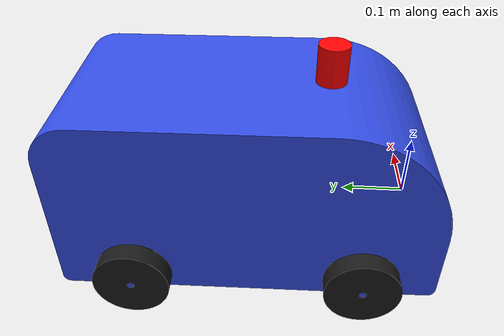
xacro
<?xml version="1.0" ?>
<robot name="rs_go" xmlns:xacro="http://www.ros.org/wiki/xacro">

<xacro:include filename="$(find rs_go)/urdf/materials.xacro" />
<xacro:include filename="$(find rs_go)/urdf/rs_go.trans" />
<xacro:include filename="$(find rs_go)/urdf/rs_go.gazebo" />
<link name="base_link">
  <inertial>
    <origin rpy="0 0 0" xyz="-0.125 0.2576675591905234 0.14581411451370685"/>
    <mass value="10.00"/> <!-- mass = 234.76101992664752-->
    <inertia ixx="5.75365" ixy="0.0" ixz="0.0" iyy="2.395906" iyz="-0.162257" izz="5.804866"/>
  </inertial>
  <visual>
    <origin rpy="0 0 0" xyz="0 0 0"/>
    <geometry>
      <mesh filename="package://rs_go/meshes/base_link.stl" scale="0.001 0.001 0.001"/>
    </geometry>
    <material name="rs_color"/>
  </visual>
  <collision>
    <origin rpy="0 0 0" xyz="0 0 0"/>
    <geometry>
      <mesh filename="package://rs_go/meshes/base_link.stl" scale="0.001 0.001 0.001"/>
    </geometry>
  </collision>
</link>

<link name="front_left_wheel_1">
  <inertial>
    <origin rpy="0 0 0" xyz="0.012499999999999997 -5.3013149425851225e-15 0.0"/>
    <mass value="1.5259304567108163"/>
    <inertia ixx="0.001926" ixy="-0.0" ixz="-0.0" iyy="0.001043" iyz="-0.0" izz="0.001043"/>
  </inertial>
  <visual>
    <origin rpy="0 0 0" xyz="-0.0 -0.1 -0.05"/>
    <geometry>
      <mesh filename="package://rs_go/meshes/front_left_wheel_1.stl" scale="0.001 0.001 0.001"/>
    </geometry>
    <material name="black"/>
  </visual>
  <collision>
    <origin rpy="0 0 0" xyz="-0.0 -0.1 -0.05"/>
    <geometry>
      <mesh filename="package://rs_go/meshes/front_left_wheel_1.stl" scale="0.001 0.001 0.001"/>
    </geometry>
  </collision>
</link>

<link name="back_left_wheel_1">
  <inertial>
    <origin rpy="0 0 0" xyz="0.012499999999999995 -5.329070518200751e-15 -4.163336342344337e-17"/>
    <mass value="1.5259304567108167"/>
    <inertia ixx="0.001926" ixy="-0.0" ixz="-0.0" iyy="0.001043" iyz="0.0" izz="0.001043"/>
  </inertial>
  <visual>
    <origin rpy="0 0 0" xyz="-0.0 -0.4 -0.05"/>
    <geometry>
      <mesh filename="package://rs_go/meshes/back_left_wheel_1.stl" scale="0.001 0.001 0.001"/>
    </geometry>
    <material name="black"/>
  </visual>
  <collision>
    <origin rpy="0 0 0" xyz="-0.0 -0.4 -0.05"/>
    <geometry>
      <mesh filename="package://rs_go/meshes/back_left_wheel_1.stl" scale="0.001 0.001 0.001"/>
    </geometry>
  </collision>
</link>

<link name="front_right_wheel_1">
  <inertial>
    <origin rpy="0 0 0" xyz="-0.012500000000000011 -5.23192600354605e-15 0.0"/>
    <mass value="1.525930456710816"/>
    <inertia ixx="0.001926" ixy="0.0" ixz="0.0" iyy="0.001043" iyz="-0.0" izz="0.001043"/>
  </inertial>
  <visual>
    <origin rpy="0 0 0" xyz="0.25 -0.1 -0.05"/>
    <geometry>
      <mesh filename="package://rs_go/meshes/front_right_wheel_1.stl" scale="0.001 0.001 0.001"/>
    </geometry>
    <material name="black"/>
  </visual>
  <collision>
    <origin rpy="0 0 0" xyz="0.25 -0.1 -0.05"/>
    <geometry>
      <mesh filename="package://rs_go/meshes/front_right_wheel_1.stl" scale="0.001 0.001 0.001"/>
    </geometry>
  </collision>
</link>

<link name="back_right_wheel_1">
  <inertial>
    <origin rpy="0 0 0" xyz="-0.012499999999999956 -5.329070518200751e-15 0.0"/>
    <mass value="1.5259304567108165"/>
    <inertia ixx="0.001926" ixy="-0.0" ixz="0.0" iyy="0.001043" iyz="0.0" izz="0.001043"/>
  </inertial>
  <visual>
    <origin rpy="0 0 0" xyz="0.25 -0.4 -0.05"/>
    <geometry>
      <mesh filename="package://rs_go/meshes/back_right_wheel_1.stl" scale="0.001 0.001 0.001"/>
    </geometry>
    <material name="black"/>
  </visual>
  <collision>
    <origin rpy="0 0 0" xyz="0.25 -0.4 -0.05"/>
    <geometry>
      <mesh filename="package://rs_go/meshes/back_right_wheel_1.stl" scale="0.001 0.001 0.001"/>
    </geometry>
  </collision>
</link>

<link name="sensor_laser">
  <inertial>
    <origin xyz="0.0 0.0 0.0" rpy="0.0 0.0 0.0"/>
    <mass value="0.1"/>
    <inertia ixx="0.1" ixy="0.0" ixz="0.0" iyy="0.1" iyz="0.0" izz="0.1"/>
  </inertial>
  <visual>
    <origin xyz="0.0 0.0 0.0" rpy="0.0 0.0 0.0"/>
    <geometry>
      <cylinder radius="0.02" length="0.05"/>
    </geometry>
    <material name="red">
      <color rgba="1.0 0.0 0.0 1.0"/>
    </material>
  </visual>
  <collision>
    <origin xyz="0.0 0.0 0.0" rpy="0.0 0.0 0.0"/>
    <geometry>
      <cylinder radius="0.02" length="0.05"/>
    </geometry>
  </collision>
</link>

<joint name="front_left_wheel_joint" type="continuous">
  <origin rpy="0 0 0" xyz="0.0 0.1 0.05"/>
  <parent link="base_link"/>
  <child link="front_left_wheel_1"/>
  <axis xyz="1.0 0.0 0.0"/>
</joint>

<joint name="back_left_wheel_joint" type="continuous">
  <origin rpy="0 0 0" xyz="0.0 0.4 0.05"/>
  <parent link="base_link"/>
  <child link="back_left_wheel_1"/>
  <axis xyz="1.0 0.0 0.0"/>
</joint>

<joint name="front_right_wheel_joint" type="continuous">
  <origin rpy="0 0 0" xyz="-0.25 0.1 0.05"/>
  <parent link="base_link"/>
  <child link="front_right_wheel_1"/>
  <axis xyz="1.0 0.0 0.0"/>
</joint>

<joint name="back_right_wheel_joint" type="continuous">
  <origin rpy="0 0 0" xyz="-0.25 0.4 0.05"/>
  <parent link="base_link"/>
  <child link="back_right_wheel_1"/>
  <axis xyz="1.0 0.0 0.0"/>
</joint>

<joint name="sensor_laser_joint" type="fixed">
  <origin xyz="-0.125 0.15 0.30" rpy="0.0 0.0 0.0"/>
  <parent link="base_link"/>
  <child link="sensor_laser"/>

</joint>
</robot>

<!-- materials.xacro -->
<robot name="rs_go" xmlns:xacro="http://www.ros.org/wiki/xacro" >

<material name="silver">
  <color rgba="0.700 0.700 0.700 1.000"/>
</material>

<material name="rs_color">
  <color rgba="0.200 0.300 0.900 1.000"/>
</material>

<material name="black">
  <color rgba="0.100 0.100 0.100 1.000"/>
</material>

</robot>

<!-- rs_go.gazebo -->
<robot name="rs_go" xmlns:xacro="http://www.ros.org/wiki/xacro" >

<xacro:property name="body_color" value="Gazebo/rs_color" />
<xacro:property name="wheel_color" value="Gazebo/black" />

<gazebo>
  <plugin filename="libgazebo_ros_control.so" name="control"/>
</gazebo>
<gazebo reference="base_link">
  <material>${body_color}</material>
  <mu1>0.2</mu1>
  <mu2>0.2</mu2>
  <selfCollide>true</selfCollide>
  <gravity>true</gravity>
</gazebo>

<gazebo reference="front_left_wheel_1">
  <material>${wheel_color}</material>
  <mu1>0.2</mu1>
  <mu2>0.2</mu2>
  <selfCollide>true</selfCollide>
</gazebo>

<gazebo reference="back_left_wheel_1">
  <material>${wheel_color}</material>
  <mu1>0.2</mu1>
  <mu2>0.2</mu2>
  <selfCollide>true</selfCollide>
</gazebo>

<gazebo reference="front_right_wheel_1">
  <material>${wheel_color}</material>
  <mu1>0.2</mu1>
  <mu2>0.2</mu2>
  <selfCollide>true</selfCollide>
</gazebo>

<gazebo reference="back_right_wheel_1">
  <material>${wheel_color}</material>
  <mu1>0.2</mu1>
  <mu2>0.2</mu2>
  <selfCollide>true</selfCollide>
</gazebo>

<gazebo>
    <plugin name="differential_drive_controller" filename="libgazebo_ros_diff_drive.so">
      <alwaysOn>true</alwaysOn>
      <updateRate>100</updateRate>
      <leftJoint>front_left_wheel_joint</leftJoint>
      <rightJoint>front_right_wheel_joint</rightJoint>
      <wheelSeparation>0.275</wheelSeparation>
      <wheelDiameter>0.1</wheelDiameter>
      <torque>20</torque>
      <commandTopic>cmd_vel</commandTopic>
      <odometryTopic>odom</odometryTopic>
      <odometryFrame>odom</odometryFrame>
      <robotBaseFrame>base_link</robotBaseFrame>
    </plugin>
  </gazebo>
<!-- Laser Scan Plugin-->
<gazebo reference="sensor_laser">
    <sensor type="ray" name="head_hokuyo_sensor">
      <pose>0 0 0 0 0 0</pose>
      <visualize>false</visualize>
      <update_rate>20</update_rate>
      <ray>
        <scan>
          <horizontal>
            <samples>720</samples>
            <resolution>1</resolution>
            <min_angle>-1.570796</min_angle>
            <max_angle>1.570796</max_angle>
          </horizontal>
        </scan>
        <range>
          <min>0.10</min>
          <max>10.0</max>
          <resolution>0.01</resolution>
        </range>
        <noise>
          <type>gaussian</type>
          <mean>0.0</mean>
          <stddev>0.01</stddev>
        </noise>
      </ray>
      <plugin name="gazebo_ros_head_hokuyo_controller" filename="libgazebo_ros_laser.so">
        <topicName>/rs_go/laser/scan</topicName>
        <frameName>sensor_laser</frameName>
      </plugin>
    </sensor>
</gazebo>

<!-- Camera Plugin-->
<gazebo reference="sensor_laser">
    <sensor type="camera" name="camera">
      <update_rate>30.0</update_rate>
      <camera name="head">
        <horizontal_fov>1.3962634</horizontal_fov>
        <image>
          <width>800</width>
          <height>800</height>
          <format>R8G8B8</format>
        </image>
        <clip>
          <near>0.02</near>
          <far>300</far>
        </clip>
        <noise>
          <type>gaussian</type>
          <mean>0.0</mean>
          <stddev>0.007</stddev>
        </noise>
      </camera>
      <plugin name="camera_controller" filename="libgazebo_ros_camera.so">
        <alwaysOn>true</alwaysOn>
        <updateRate>0.0</updateRate>

        <cameraName>rs_go/camera</cameraName>
        <imageTopicName>image_raw</imageTopicName>
        <cameraInfoTopicName>camera_info</cameraInfoTopicName>
        <frameName>sensor_laser</frameName>
        <hackBaseline>0.07</hackBaseline>
        <distortionK1>0.0</distortionK1>
        <distortionK2>0.0</distortionK2>
        <distortionK3>0.0</distortionK3>
        <distortionT1>0.0</distortionT1>
        <distortionT2>0.0</distortionT2>
      </plugin>
    </sensor>
  </gazebo>
</robot>
